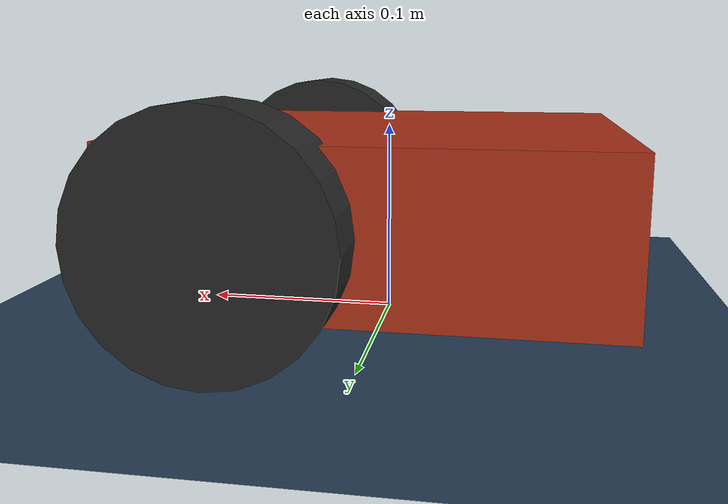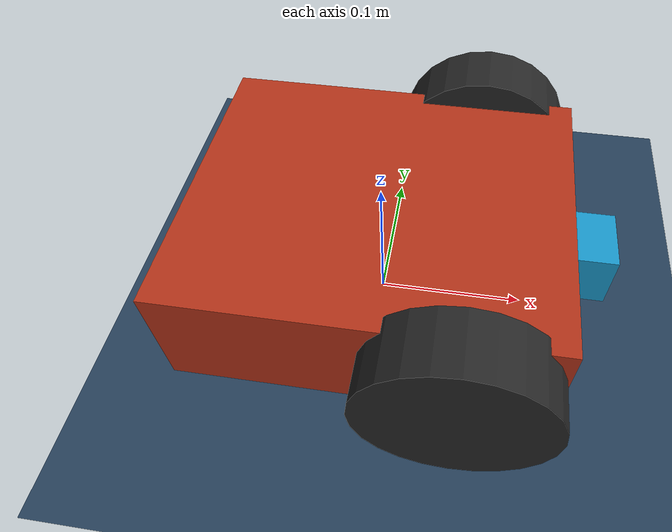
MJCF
<mujoco model="diffdrive">
  <option timestep="0.005" integrator="implicitfast"/>

  <default>
    <default class="wheel">
      <joint type="hinge" axis="0 1 0" damping="0.0001"/>
      <geom type="cylinder" size="0.06 0.02" material="wheel"
            friction="1.5 0.02 0.001" mass="0.2"/>
    </default>
  </default>

  <asset>
    <texture name="grid" type="2d" builtin="checker" rgb1=".1 .2 .3" rgb2=".2 .3 .4" width="300" height="300"/>
    <material name="grid" texture="grid" texrepeat="12 12" reflectance=".2"/>
    <material name="chassis" rgba=".7 .2 .1 1"/>
    <material name="wheel" rgba=".15 .15 .15 1"/>
    <material name="caster" rgba=".4 .4 .4 1"/>
    <material name="heading" rgba=".1 .6 .8 1"/>
  </asset>

  <worldbody>
    <light name="light" pos="0 0 4" dir="0 0 -1"/>
    <geom name="floor" pos="0 0 0" size="0 0 .05" type="plane" material="grid"
          friction="1.0 0.005 0.0001"/>

    <body name="base" pos="0 0 0.06">
      <freejoint name="root"/>
      <geom name="chassis" type="box" size="0.12 0.10 0.04" material="chassis" mass="2.0"/>
      <!-- Heading marker so forward (+x) is visible. -->
      <geom name="nose" type="box" pos="0.13 0 0" size="0.02 0.02 0.02"
            material="heading" mass="0.001"/>
      <!-- Rear caster: a near-frictionless support point (non-driven), so the only
           traction is at the wheels and there is no stiction threshold to overcome. -->
      <geom name="caster" type="sphere" pos="-0.10 0 -0.04" size="0.02"
            material="caster" friction="0.0001 0.0001 0.0001" condim="1" mass="0.05"/>

      <body name="left_wheel" pos="0.06 0.11 0">
        <joint name="left_wheel" class="wheel"/>
        <geom name="left_wheel" class="wheel" euler="90 0 0"/>
      </body>
      <body name="right_wheel" pos="0.06 -0.11 0">
        <joint name="right_wheel" class="wheel"/>
        <geom name="right_wheel" class="wheel" euler="90 0 0"/>
      </body>
    </body>
  </worldbody>

  <actuator>
    <motor name="left_wheel" joint="left_wheel" gear="1" ctrllimited="true" ctrlrange="-0.6 0.6"/>
    <motor name="right_wheel" joint="right_wheel" gear="1" ctrllimited="true" ctrlrange="-0.6 0.6"/>
  </actuator>
</mujoco>
